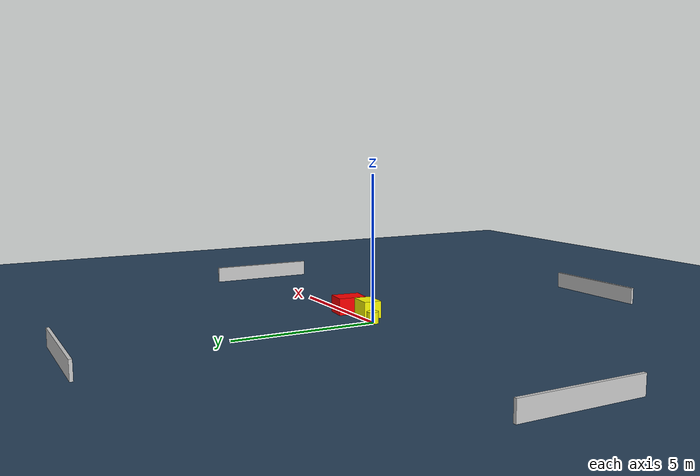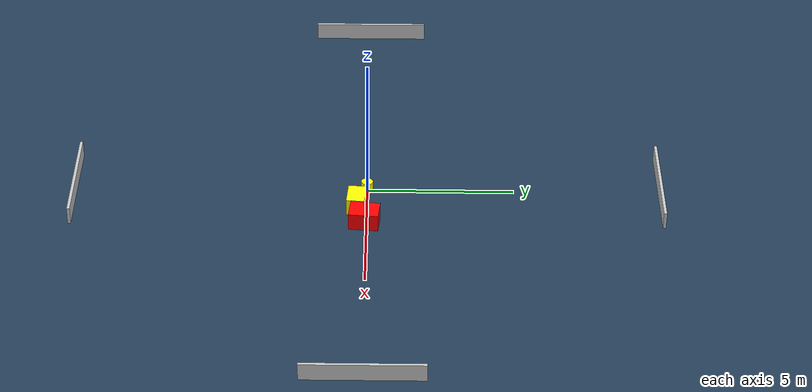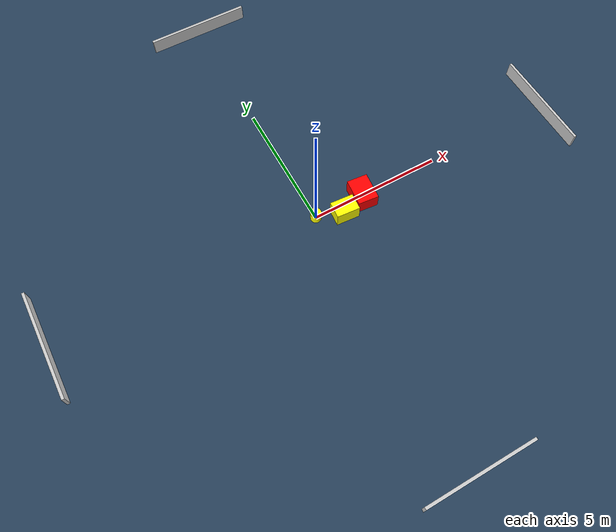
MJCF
<?xml version="1.0" ?>
<mujoco model="generated_environment">
  <option timestep="0.01" integrator="RK4" cone="elliptic"/>
  <default>
    <geom density="1"/>
  </default>
  <asset>
    <texture builtin="gradient" height="3072" name="skybox" rgb1="0.3 0.5 0.7" rgb2="0 0 0" type="skybox" width="512"/>
    <texture builtin="checker" height="300" name="groundplane" rgb1="0.2 0.3 0.4" rgb2="0.1 0.2 0.3" type="2d" width="300"/>
    <material name="groundplane" reflectance="0.2" texrepeat="5 5" texture="groundplane"/>
  </asset>
  <worldbody>
    <light dir="0 0 -1" directional="true" pos="0 0 1.5"/>
    <geom condim="3" friction="0.5 0.005 0.001" material="groundplane" name="floor" pos="0 0 0" size="0 0 0.05" type="plane"/>
    <body name="walls">
      <geom name="wall_1" condim="4" pos="-10.0 0.0 0.3" rgba="0.800000011920929 0.800000011920929 0.800000011920929 1.0" size="0.05 2.0 0.3" type="box"/>
      <geom name="wall_2" condim="4" pos="10.0 0.0 0.3" rgba="0.800000011920929 0.800000011920929 0.800000011920929 1.0" size="0.05 2.0 0.3" type="box"/>
      <geom name="wall_3" condim="4" pos="0.0 -10.0 0.3" rgba="0.800000011920929 0.800000011920929 0.800000011920929 1.0" size="2.0 0.05 0.3" type="box"/>
      <geom name="wall_4" condim="4" pos="0.0 10.0 0.3" rgba="0.800000011920929 0.800000011920929 0.800000011920929 1.0" size="2.0 0.05 0.3" type="box"/>
    </body>
    <body name="robot">
      <joint name="joint_x" type="slide" pos="0 0 0" axis="1 0 0"/>
      <joint name="joint_y" type="slide" pos="0 0 0" axis="0 1 0"/>
      <geom name="robot" type="cylinder" pos="0.0 0.0 0.2" size="0.2 0.2 0.0" mass="5.0" friction="1.0 0.005 0.0001" condim="4" rgba="1.0 1.0 0.0 1.0"/>
    </body>
    <body name="obstacle_1_movable">
      <geom name="obstacle_1_movable" condim="4" pos="0.9875988735811472 -0.35123390720677117 0.3" euler="0 0 175.60039066757417" friction="0.0 0.005 0.001" rgba="1.0 1.0 0.0 1.0" size="0.4362455939620792 0.3077653884729284 0.3" type="box" mass="0.1"/>
      <joint type="free"/>
    </body>
    <body name="obstacle_2_static">
      <geom name="obstacle_2_static" condim="4" pos="1.882594165836418 -0.0735005888813799 0.3" euler="0 0 264.4582712208346" friction="0.0 0.005 0.001" rgba="1.0 0.0 0.0 1.0" size="0.5032563526914602 0.3868274285769233 0.3" type="box"/>
    </body>
  </worldbody>
  <actuator>
    <motor name="actuator_x" joint="joint_x" gear="1" ctrlrange="-1 1"/>
    <motor name="actuator_y" joint="joint_y" gear="1" ctrlrange="-1 1"/>
  </actuator>
</mujoco>
